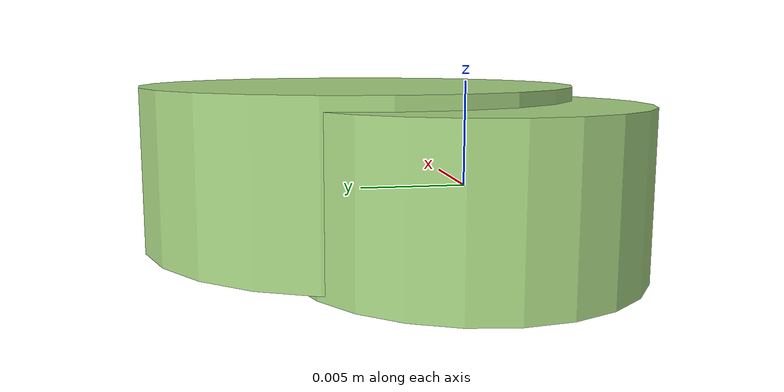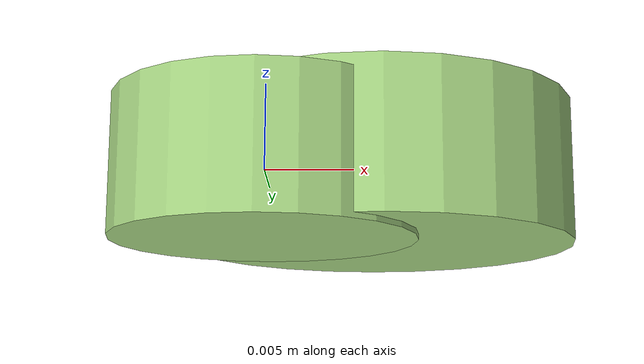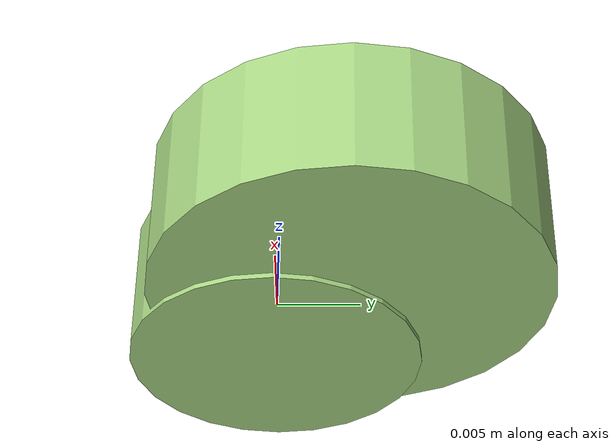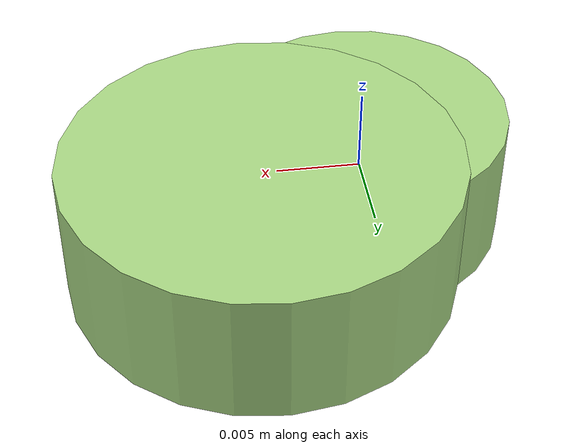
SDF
<?xml version="1.0" ?>
<!-- |    This document was autogenerated by xmacro from data/veggie_template/veggie_base.sdf.xacro  | -->
<!-- |    EDITING THIS FILE BY HAND IS NOT RECOMMENDED                                               | -->
<sdf version="1.8">
	<!-- Parameters -->
	<!-- Base -->
	<!-- Joint 0 -->
	<!-- Link 1 -->
	<!-- Joint 1 -->
	<!-- Link 2 -->
	<!-- Primitives -->
	<!-- All dimensions are half -->
	<!-- Object -->
	<model name="veggie">
		<!-- link0 -->
		<link name="link0">
			<inertial>
				<mass>0.0018240151605933442</mass>
				<inertia>
					<ixx>4.298368327018468e-08</ixx>
					<ixy>0</ixy>
					<ixz>0</ixz>
					<iyy>4.298368327018468e-08</iyy>
					<iyz>0</iyz>
					<izz>6.695226461085913e-08</izz>
				</inertia>
			</inertial>
			<visual name="link0_visual">
				<pose>0 0 0 0 0 0</pose>
				<geometry>
					<cylinder>
						<radius>0.008568078002967295</radius>
						<length>0.007908802533131698</length>
					</cylinder>
				</geometry>
				<material>
					<ambient>0.659 0.839 0.514 1</ambient>
					<diffuse>0.659 0.839 0.514 1</diffuse>
					<specular>0 0 0 0</specular>
					<emissive>0 0 0 1</emissive>
				</material>
			</visual>
			<collision name="link0_collision">
				<pose>0 0 0 0 0 0 </pose>
				<geometry>
					<cylinder>
						<radius>0.008568078002967295</radius>
						<length>0.007908802533131698</length>
					</cylinder>
				</geometry>
			</collision>
		</link>
		<!-- link1 -->
		<joint name="joint0" type="fixed">
			<pose relative_to="link0">0.0064344887396439844 0.004319703002196008 0.000484484411461596 0.0 0.0 0.0</pose>
			<parent>link0</parent>
			<child>link1</child>
		</joint>
		<link name="link1">
			<pose relative_to="joint0">0 0 0 0 0 0</pose>
			<inertial>
				<mass>0.0034133520456019286</mass>
				<inertia>
					<ixx>1.315408400123646e-07</ixx>
					<ixy>0</ixy>
					<ixz>0</ixz>
					<iyy>1.315408400123646e-07</iyy>
					<iyz>0</iyz>
					<izz>2.241483840863726e-07</izz>
				</inertia>
			</inertial>
			<visual name="link1_visual">
				<pose>0 0 0 0 0 0</pose>
				<geometry>
					<cylinder>
						<radius>0.011460201734742324</radius>
						<length>0.008272669405165458</length>
					</cylinder>
				</geometry>
				<material>
					<ambient>0.659 0.839 0.514 1</ambient>
					<diffuse>0.659 0.839 0.514 1</diffuse>
					<specular>0 0 0 0</specular>
					<emissive>0 0 0 1</emissive>
				</material>
			</visual>
			<collision name="link1_collision">
				<pose>0 0 0 0 0 0 </pose>
				<geometry>
					<cylinder>
						<radius>0.011460201734742324</radius>
						<length>0.008272669405165458</length>
					</cylinder>
				</geometry>
			</collision>
		</link>
		<!-- link2 -->
	</model>
</sdf>
